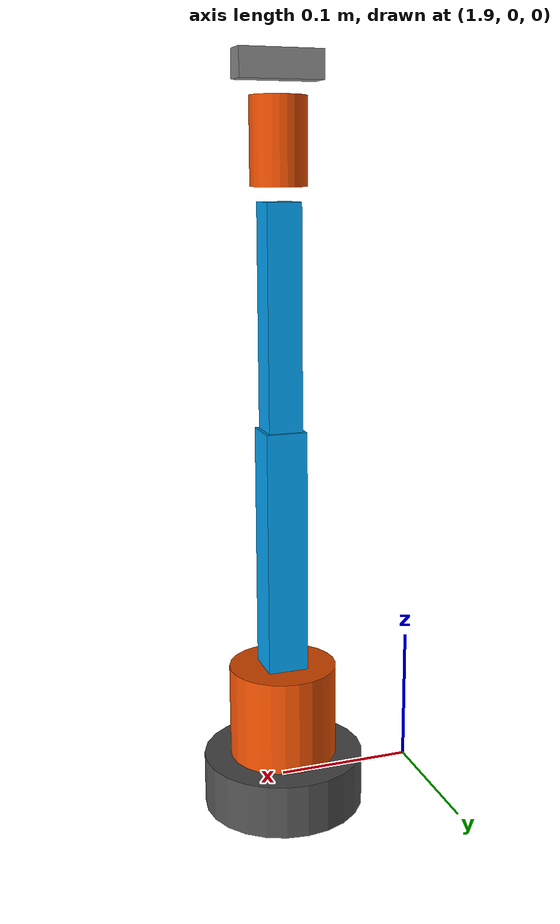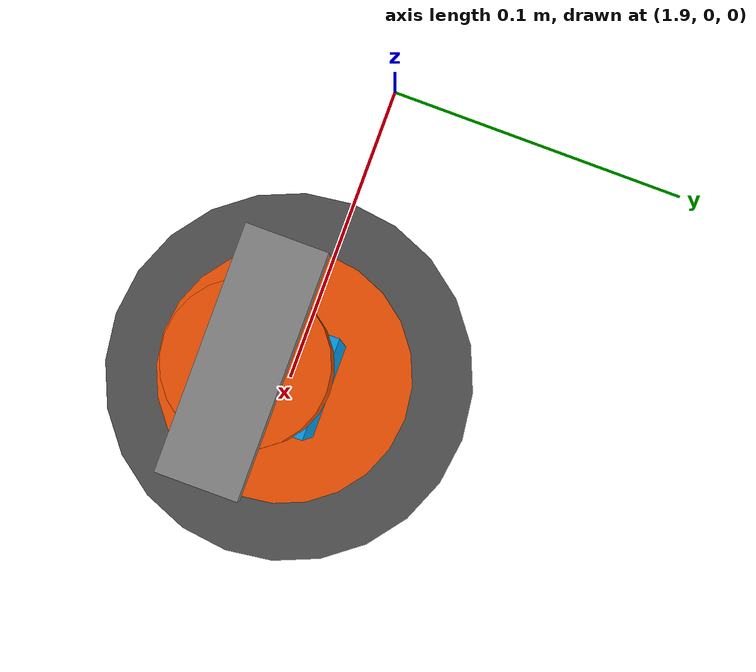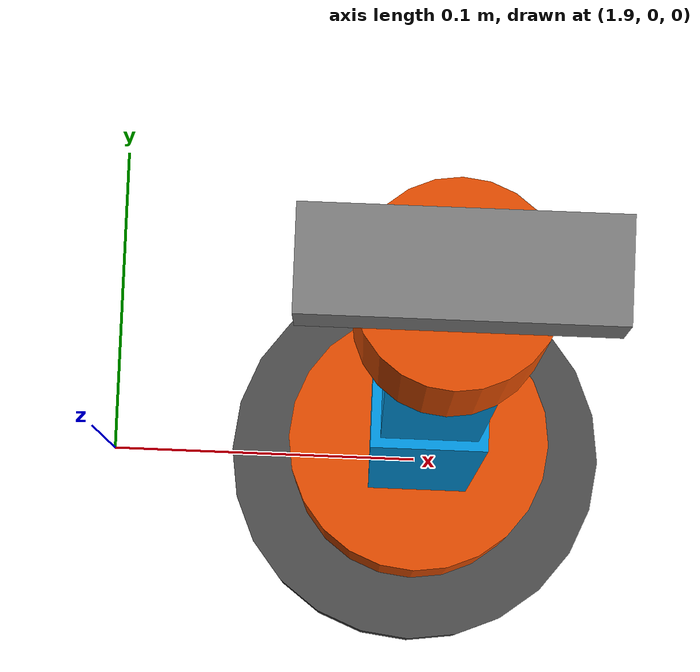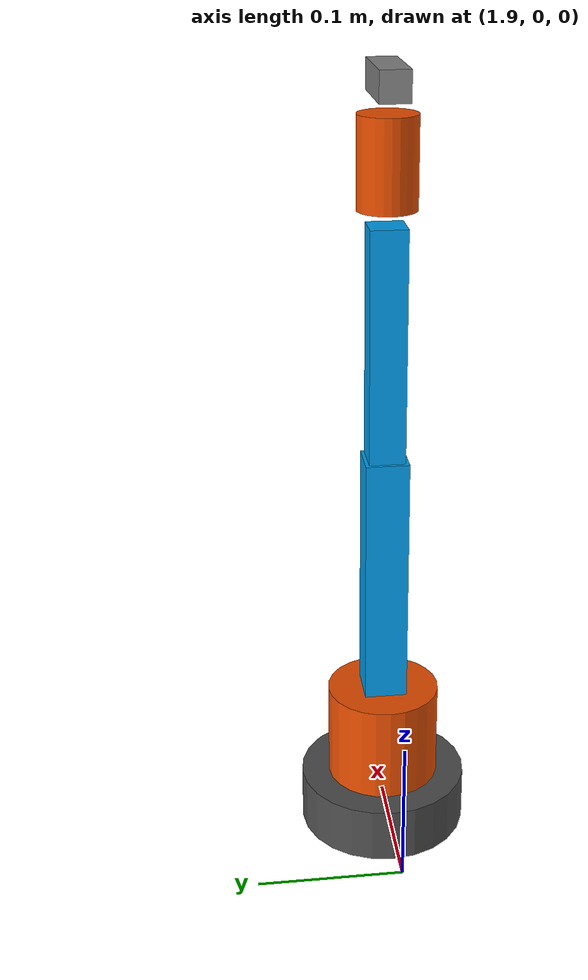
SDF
<?xml version="1.0" ?>
<sdf version="1.9">
  <model name="robot_arm">
    <pose>2 0 0 0 0 0</pose>
    <joint name="world_fix" type="fixed"><parent>world</parent><child>base_link</child></joint>
    <link name="base_link">
      <inertial><mass>2.0</mass><inertia><ixx>0.01</ixx><ixy>0</ixy><ixz>0</ixz><iyy>0.01</iyy><iyz>0</iyz><izz>0.01</izz></inertia></inertial>
      <visual name="v"><geometry><cylinder><radius>0.06</radius><length>0.04</length></cylinder></geometry><material><ambient>0.2 0.2 0.2 1</ambient><diffuse>0.3 0.3 0.3 1</diffuse></material></visual>
      <collision name="c"><geometry><cylinder><radius>0.06</radius><length>0.04</length></cylinder></geometry></collision>
    </link>
    <link name="link1"><pose relative_to="base_link">0 0 0.05 0 0 0</pose>
      <inertial><mass>0.5</mass><inertia><ixx>0.001</ixx><ixy>0</ixy><ixz>0</ixz><iyy>0.001</iyy><iyz>0</iyz><izz>0.001</izz></inertia></inertial>
      <visual name="v"><geometry><cylinder><radius>0.04</radius><length>0.08</length></cylinder></geometry><material><ambient>0.8 0.2 0 1</ambient><diffuse>0.9 0.3 0 1</diffuse></material></visual>
      <collision name="c"><geometry><cylinder><radius>0.04</radius><length>0.08</length></cylinder></geometry></collision>
    </link>
    <joint name="joint1" type="revolute"><parent>base_link</parent><child>link1</child><axis><xyz>0 0 1</xyz><limit><lower>-3.14</lower><upper>3.14</upper><effort>50</effort></limit></axis></joint>
    <link name="link2"><pose relative_to="link1">0 0 0.12 0 0 0</pose>
      <inertial><mass>0.4</mass><inertia><ixx>0.002</ixx><ixy>0</ixy><ixz>0</ixz><iyy>0.002</iyy><iyz>0</iyz><izz>0.0005</izz></inertia></inertial>
      <visual name="v"><geometry><box><size>0.03 0.03 0.2</size></box></geometry><material><ambient>0 0.5 0.8 1</ambient><diffuse>0 0.6 0.9 1</diffuse></material></visual>
      <collision name="c"><geometry><box><size>0.03 0.03 0.2</size></box></geometry></collision>
    </link>
    <joint name="joint2" type="revolute"><parent>link1</parent><child>link2</child><axis><xyz>0 1 0</xyz><limit><lower>-1.57</lower><upper>1.57</upper><effort>50</effort></limit></axis></joint>
    <link name="link3"><pose relative_to="link2">0 0 0.18 0 0 0</pose>
      <inertial><mass>0.3</mass><inertia><ixx>0.001</ixx><ixy>0</ixy><ixz>0</ixz><iyy>0.001</iyy><iyz>0</iyz><izz>0.0003</izz></inertia></inertial>
      <visual name="v"><geometry><box><size>0.025 0.025 0.16</size></box></geometry><material><ambient>0 0.5 0.8 1</ambient><diffuse>0 0.6 0.9 1</diffuse></material></visual>
      <collision name="c"><geometry><box><size>0.025 0.025 0.16</size></box></geometry></collision>
    </link>
    <joint name="joint3" type="revolute"><parent>link2</parent><child>link3</child><axis><xyz>0 1 0</xyz><limit><lower>-2.0</lower><upper>2.0</upper><effort>30</effort></limit></axis></joint>
    <link name="link4"><pose relative_to="link3">0 0 0.12 0 0 0</pose>
      <inertial><mass>0.2</mass><inertia><ixx>0.0005</ixx><ixy>0</ixy><ixz>0</ixz><iyy>0.0005</iyy><iyz>0</iyz><izz>0.0002</izz></inertia></inertial>
      <visual name="v"><geometry><cylinder><radius>0.02</radius><length>0.06</length></cylinder></geometry><material><ambient>0.8 0.2 0 1</ambient><diffuse>0.9 0.3 0 1</diffuse></material></visual>
      <collision name="c"><geometry><cylinder><radius>0.02</radius><length>0.06</length></cylinder></geometry></collision>
    </link>
    <joint name="joint4" type="revolute"><parent>link3</parent><child>link4</child><axis><xyz>0 0 1</xyz><limit><lower>-3.14</lower><upper>3.14</upper><effort>20</effort></limit></axis></joint>
    <link name="gripper_base"><pose relative_to="link4">0 0 0.05 0 0 0</pose>
      <inertial><mass>0.1</mass><inertia><ixx>0.0001</ixx><ixy>0</ixy><ixz>0</ixz><iyy>0.0001</iyy><iyz>0</iyz><izz>0.0001</izz></inertia></inertial>
      <visual name="v"><geometry><box><size>0.06 0.02 0.02</size></box></geometry><material><ambient>0.5 0.5 0.5 1</ambient></material></visual>
    </link>
    <joint name="gripper_joint" type="fixed"><parent>link4</parent><child>gripper_base</child></joint>
    <plugin filename="gz-sim-joint-position-controller-system" name="gz::sim::systems::JointPositionController"><joint_name>joint1</joint_name><topic>arm_j1</topic><p_gain>20</p_gain><i_gain>0.1</i_gain><d_gain>1.0</d_gain></plugin>
    <plugin filename="gz-sim-joint-position-controller-system" name="gz::sim::systems::JointPositionController"><joint_name>joint2</joint_name><topic>arm_j2</topic><p_gain>20</p_gain><i_gain>0.1</i_gain><d_gain>1.0</d_gain></plugin>
    <plugin filename="gz-sim-joint-position-controller-system" name="gz::sim::systems::JointPositionController"><joint_name>joint3</joint_name><topic>arm_j3</topic><p_gain>15</p_gain><i_gain>0.1</i_gain><d_gain>0.5</d_gain></plugin>
    <plugin filename="gz-sim-joint-position-controller-system" name="gz::sim::systems::JointPositionController"><joint_name>joint4</joint_name><topic>arm_j4</topic><p_gain>10</p_gain><i_gain>0.1</i_gain><d_gain>0.5</d_gain></plugin>
  </model>
</sdf>
